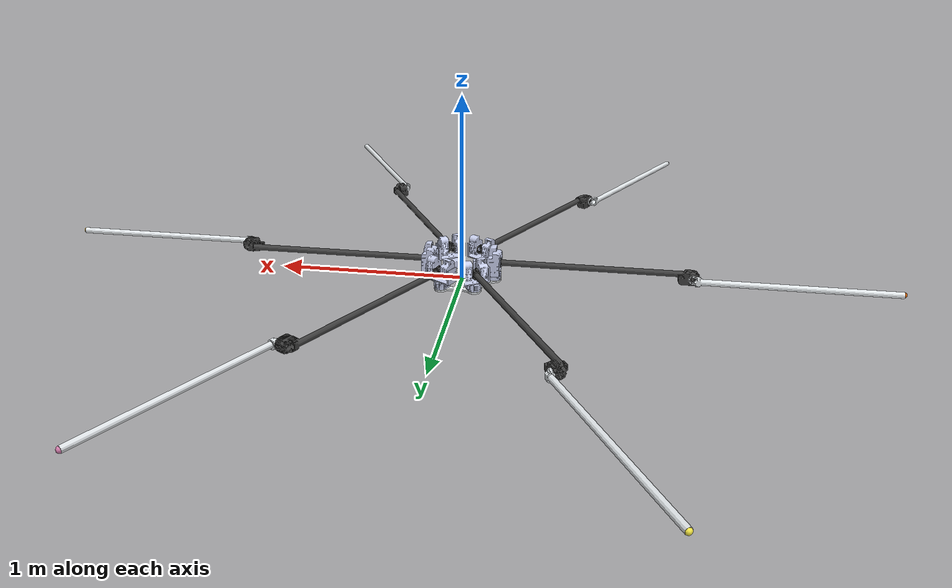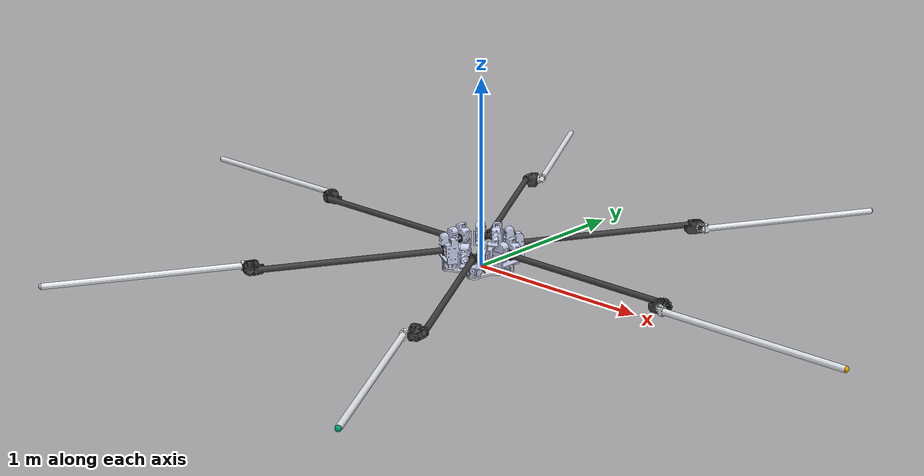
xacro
<?xml version="1.0"?>

<robot xmlns:xacro="http://www.ros.org/wiki/xacro" name="titan6">

  <xacro:property name="PI" value="3.1415926535897931" />
  <xacro:property name="sqrt3" value="1.732051" />
  <xacro:property name="mountRadius" value="0.175976" />
  <xacro:property name="mountHeight" value="0.032525" />

  <!-- load macros for modules -->
  <xacro:include filename="./leg.xacro"/>

  <!-- Import all Gazebo-customization elements -->
  <xacro:include filename="./titan6.gazebo" />

  <!-- ************************* ROBOT DEFINITION ************************* -->

  <xacro:property name="L1_1" value="SA014__MoJo" />
  <xacro:property name="L1_2" value="SA013__MoJo" />
  <xacro:property name="L1_3" value="SA023__MoJo" />

  <xacro:property name="L2_1" value="SA037__MoJo" />
  <xacro:property name="L2_2" value="SA049__MoJo" />
  <xacro:property name="L2_3" value="SA030__MoJo" />

  <xacro:property name="L3_1" value="SA036__MoJo" />
  <xacro:property name="L3_2" value="SA046__MoJo" />
  <xacro:property name="L3_3" value="SA038__MoJo" />

  <xacro:property name="L4_1" value="SA022__MoJo" />
  <xacro:property name="L4_2" value="SA050__MoJo" />
  <xacro:property name="L4_3" value="SA031__MoJo" />

  <xacro:property name="L5_1" value="SA002__MoJo" />
  <xacro:property name="L5_2" value="SA003__MoJo" />
  <xacro:property name="L5_3" value="SA048__MoJo" />

  <xacro:property name="L6_1" value="SA043__MoJo" />
  <xacro:property name="L6_2" value="SA005__MoJo" />
  <xacro:property name="L6_3" value="SA001__MoJo" />

  <link name="kdl_dummy_root" />
  <joint name="kdl_dummy_root_to_base" type="fixed">
    <parent link="kdl_dummy_root"/>
    <child link="base_link"/>
  </joint>

  <link
    name="base_link">
    <inertial>
      <origin
        xyz="0 -2.7756E-17 0.0047625"
        rpy="0 0 0" />
      <mass
        value="0.5" />
      <inertia
        ixx="0"
        ixy="0"
        ixz="0"
        iyy="0"
        iyz="0"
        izz="0" />
    </inertial>
    <visual>
      <origin
        xyz="0 0 0"
        rpy="0 0 0" />
      <geometry>
        <mesh
          filename="package://titan6_description/meshes/base_link.STL" />
      </geometry>
      <material
        name="">
        <color
          rgba="0.89804 0.91765 0.92941 1" />
      </material>
    </visual>
    <collision>
      <origin
        xyz="0 0 0"
        rpy="0 0 0" />
      <geometry>
        <mesh
          filename="package://titan6_description/meshes/base_link.STL" />
      </geometry>
    </collision>
  </link>

  <!-- leg outputs on the base -->
  <joint name="leg1_L1_0" type="fixed">
    <origin
      xyz="${mountRadius/2} ${mountRadius/2*sqrt3} ${mountHeight}"
      rpy="0 0 ${PI/3}" />
    <parent link="base_link" />
    <child link="leg1_Link0" />
  </joint>

  <joint name="leg2_L1_0" type="fixed">
    <origin
      xyz="${-mountRadius/2} ${mountRadius/2*sqrt3} ${mountHeight}"
      rpy="0 0 ${PI*2/3}" />
    <parent link="base_link" />
    <child link="leg2_Link0" />
  </joint>

  <joint name="leg3_L1_0" type="fixed">
    <origin
      xyz="${mountRadius} 0 ${mountHeight}"
      rpy="0 0 0" />
    <parent link="base_link" />
    <child link="leg3_Link0" />
  </joint>

  <joint name="leg4_L1_0" type="fixed">
    <origin
      xyz="${-mountRadius} 0 ${mountHeight}"
      rpy="0 0 ${PI}" />
    <parent link="base_link" />
    <child link="leg4_Link0" />
  </joint>

  <joint name="leg5_L1_0" type="fixed">
    <origin
      xyz="${mountRadius/2} ${-mountRadius/2*sqrt3} ${mountHeight}"
      rpy="0 0 ${-PI/3}" />
    <parent link="base_link" />
    <child link="leg5_Link0" />
  </joint>

  <joint name="leg6_L1_0" type="fixed">
    <origin
      xyz="${-mountRadius/2} ${-mountRadius/2*sqrt3} ${mountHeight}"
      rpy="0 0 ${-PI*2/3}" />
    <parent link="base_link" />
    <child link="leg6_Link0" />
  </joint>

  <xacro:leg leg="leg1" mod1="${L1_1}" mod2="${L1_2}" mod3="${L1_3}"/>
  <xacro:leg leg="leg2" mod1="${L2_1}" mod2="${L2_2}" mod3="${L2_3}"/>
  <xacro:leg leg="leg3" mod1="${L3_1}" mod2="${L3_2}" mod3="${L3_3}"/>
  <xacro:leg leg="leg4" mod1="${L4_1}" mod2="${L4_2}" mod3="${L4_3}"/>
  <xacro:leg leg="leg5" mod1="${L5_1}" mod2="${L5_2}" mod3="${L5_3}"/>
  <xacro:leg leg="leg6" mod1="${L6_1}" mod2="${L6_2}" mod3="${L6_3}"/>

</robot>

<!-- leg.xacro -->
<robot xmlns:xacro="http://www.ros.org/wiki/xacro">

  <xacro:property name="PI" value="3.1415926535897931" />
  <!-- NOTE: joint must match the name of the module -->
  <xacro:macro name="leg" params="leg mod1 mod2 mod3">

    <link
    name="${leg}_Link0">
    <inertial>
      <origin
        xyz="-0.013312 -0.0013264 -0.0010606"
        rpy="0 0 0" />
      <mass
        value="0.5" />
      <inertia
        ixx="0"
        ixy="0"
        ixz="0"
        iyy="0"
        iyz="0"
        izz="0" />
    </inertial>
    <visual>
      <origin
        xyz="0 0 0"
        rpy="0 0 0" />
      <geometry>
        <mesh
          filename="package://titan6_description/meshes/Link0.STL" />
      </geometry>
      <material
        name="">
        <color
          rgba="0.79216 0.81961 0.93333 1" />
      </material>
    </visual>
    <collision>
      <origin
        xyz="0 0 0"
        rpy="0 0 0" />
      <geometry>
        <mesh
          filename="package://titan6_description/meshes/Link0.STL" />
      </geometry>
    </collision>
  </link>

  <link
    name="${leg}_Link1">
    <inertial>
      <origin
        xyz="0 0 0.048171"
        rpy="1.5708 0 0" />
      <mass
        value="1.367" />
      <inertia
        ixx=".002"
        ixy="0."
        ixz="0."
        iyy=".002"
        iyz="0."
        izz=".002" />
    </inertial>
    <visual>
      <origin
        xyz="0 0 0"
        rpy="1.5708 0 0" />
      <geometry>
        <mesh
          filename="package://titan6_description/meshes/Link1_2.STL" />
      </geometry>
      <material
        name="">
        <color
          rgba="0.79216 0.81961 0.93333 1" />
      </material>
    </visual>
    <collision>
      <origin
        xyz="0 0 0"
        rpy="1.5708 0 0" />
      <geometry>
        <mesh
          filename="package://titan6_description/meshes/Link1_2.STL" />
      </geometry>
    </collision>
  </link>

  <joint
    name="${mod1}"
    type="revolute">
    <origin
      xyz="0 0 0.02205"
      rpy="0 0 -1.5708" />
    <parent
      link="${leg}_Link0" />
    <child
      link="${leg}_Link1" />
    <axis
      xyz="0 0 1" />
    <dynamics damping=".1" friction="0.2"/>
    <limit effort="5000.0" lower="-${PI/2}" upper="${PI/2}" velocity="2.208932"/>
  </joint>
	<!-- Add gazebo plugin joint force sensor -->
	<gazebo reference="${mod1}">
		<provideFeedback>true</provideFeedback>
	</gazebo>
	<gazebo>
	      <plugin filename="libgazebo_ros_ft_sensor.so" name="ft_sensor_plugin">
		<topicName>titan6/jointFeedback/${leg}/ftbetween01/${mod1}</topicName>
		<jointName>${mod1}</jointName>
		<updateRate>10.0</updateRate>
	      </plugin>
	</gazebo>

  <transmission name="${mod1}_trans">
    <type>transmission_interface/SimpleTransmission</type>
    <joint name="${mod1}">
      <hardwareInterface>EffortJointInterface</hardwareInterface>
    </joint>
    <actuator name="${mod1}_motor">
      <hardwareInterface>EffortJointInterface</hardwareInterface>
      <mechanicalReduction>300</mechanicalReduction>
    </actuator>
  </transmission>

  <link
    name="${leg}_Link2">
    <inertial>
      <origin
        xyz="0.00043046 0.6759 0.056602"
        rpy="0 0 0" />
      <mass
        value="0.9687" />
      <inertia
        ixx="0.1249"
        ixy="0"
        ixz="0"
        iyy="0"
        iyz="0"
        izz="0.1250" />
    </inertial>
    <visual>
      <origin
        xyz="0 0 0"
        rpy="0 -1.5708 -3.1416" />
      <geometry>
        <mesh
          filename="package://titan6_description/meshes/Link1_3.STL" />
      </geometry>
      <material
        name="">
        <color
          rgba="0.25098 0.25098 0.25098 1" />
      </material>
    </visual>
    <collision>
      <origin
        xyz="0 0 0"
        rpy="0 -1.5708 -3.1416" />
      <geometry>
        <mesh
          filename="package://titan6_description/meshes/Link1_3.STL" />
      </geometry>
    </collision>
  </link>
  <joint
    name="${mod2}"
    type="revolute">
    <origin
      xyz="0 0 0.0514"
      rpy="0 1.5708 0" />
    <parent
      link="${leg}_Link1" />
    <child
      link="${leg}_Link2" />
    <axis
      xyz="0 0 1" />
    <dynamics damping=".1" friction="0.2"/>
    <limit effort="5000.0" lower="-${PI/6}" upper="${PI/2}" velocity="2.208932"/>
  </joint>
	<!-- Add gazebo plugin joint force sensor -->
	<gazebo reference="${mod2}">
		<provideFeedback>true</provideFeedback>
	</gazebo>
	<gazebo>
	      <plugin filename="libgazebo_ros_ft_sensor.so" name="ft_sensor_plugin">
		<topicName>titan6/jointFeedback/${leg}/ftbetween12/${mod2}</topicName>
		<jointName>${mod2}</jointName>
		<updateRate>10.0</updateRate>
	      </plugin>
	</gazebo>

  <transmission name="${mod2}_trans">
    <type>transmission_interface/SimpleTransmission</type>
    <joint name="${mod2}">
      <hardwareInterface>EffortJointInterface</hardwareInterface>
    </joint>
    <actuator name="${mod2}_motor">
      <hardwareInterface>EffortJointInterface</hardwareInterface>
      <mechanicalReduction>300</mechanicalReduction>
    </actuator>
  </transmission>

  <link
    name="${leg}_Link3">
    <inertial>
      <origin
        xyz="3.6557E-09 -0.44069 0.041072"
        rpy="0 0 0" />
      <mass
        value="0.3727" />
      <inertia
        ixx="0.0379"
        ixy="0"
        ixz="0"
        iyy="0"
        iyz="0"
        izz="0.0379" />
    </inertial>
    <visual>
      <origin
        xyz="0 0 0"
        rpy="1.5708 0 ${PI}" />
      <geometry>
        <mesh
          filename="package://titan6_description/meshes/Link1_4.STL" />
      </geometry>
      <material
        name="">
        <color
          rgba="0.89804 0.91765 0.92941 1" />
      </material>
    </visual>
    <collision>
      <origin
        xyz="0 0 0"
        rpy="1.5708 0 ${PI}" />
      <geometry>
        <mesh
          filename="package://titan6_description/meshes/Link1_4.STL" />
      </geometry>
       <surface>
        <friction>
          <ode>
            <mu>0.9</mu>
            <mu2>0.9</mu2>
          </ode>
        </friction>
      </surface>
    </collision>
  </link>
  <joint
    name="${mod3}"
    type="revolute">
    <origin
      xyz="0 1.0255 0.08505"
      rpy="0 0 1.5708" />
    <parent
      link="${leg}_Link2" />
    <child
      link="${leg}_Link3" />
    <axis
      xyz="0 0 1" />
    <dynamics damping=".1" friction="0.2"/>
    <limit effort="5000.0" lower="-${PI}" upper="${PI/4}" velocity="2.208932"/>
  </joint>
	<!-- Add gazebo plugin joint force sensor -->
	<gazebo reference="${mod3}">
		<provideFeedback>true</provideFeedback>
	</gazebo>
	<gazebo>
	      <plugin filename="libgazebo_ros_ft_sensor.so" name="ft_sensor_plugin">
		<topicName>titan6/jointFeedback/${leg}/ftbetween23/${mod3}</topicName>
		<jointName>${mod3}</jointName>
		<updateRate>10.0</updateRate>
	      </plugin>
	</gazebo>

  <transmission name="${mod3}_trans">
    <type>transmission_interface/SimpleTransmission</type>
    <joint name="${mod3}">
      <hardwareInterface>EffortJointInterface</hardwareInterface>
    </joint>
    <actuator name="${mod3}_motor">
      <hardwareInterface>EffortJointInterface</hardwareInterface>
      <mechanicalReduction>300</mechanicalReduction>
    </actuator>
  </transmission>

  <link
    name="${leg}_Foot">
    <fdir1>1 0 0</fdir1>
    <maxContacts>1</maxContacts>
    <minDepth>0.005</minDepth>
    <gravity>true</gravity>
    <visual>
      <origin
        xyz="0 0 0"
        rpy="0 0 0" />
      <geometry>
        <sphere radius=".015"/>
      </geometry>
      <mu1>0.9</mu1>
      <mu2>0.9</mu2>
      <static>false</static>
      <selfCollide>true</selfCollide>
    </visual>
    <collision>
      <origin
        xyz="0 0 0"
        rpy="0 0 0" />
      <geometry>
        <sphere radius=".015"/>
      </geometry>
      <surface>
        <friction>
          <ode>
            <mu>0.9</mu>
            <mu2>0.9</mu2>
          </ode>
        </friction>
      </surface>
    </collision>
  </link>
  <joint
    name="${leg}_foot_joint"
    type="fixed">
    <origin
      xyz="1.01 0 0"
      rpy="0 0 0" />
    <parent
      link="${leg}_Link3" />
    <child
      link="${leg}_Foot" />
  </joint>

  </xacro:macro>
</robot>
